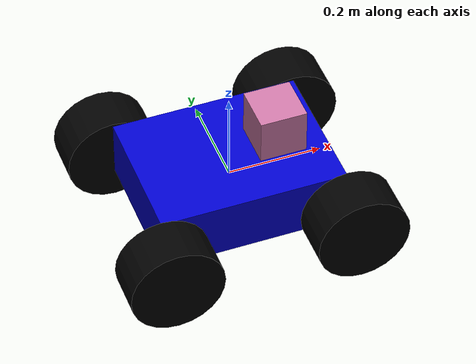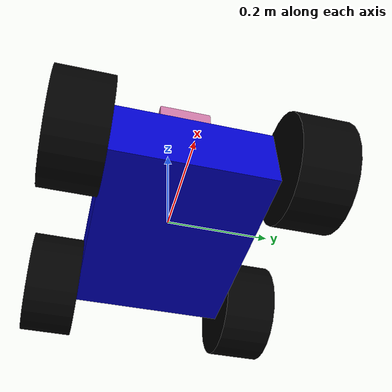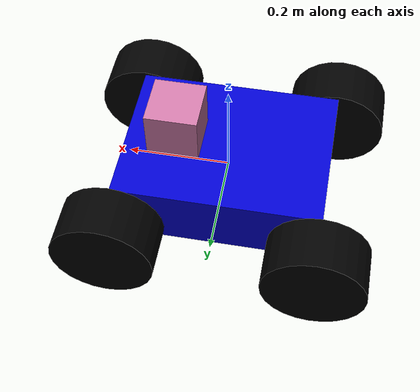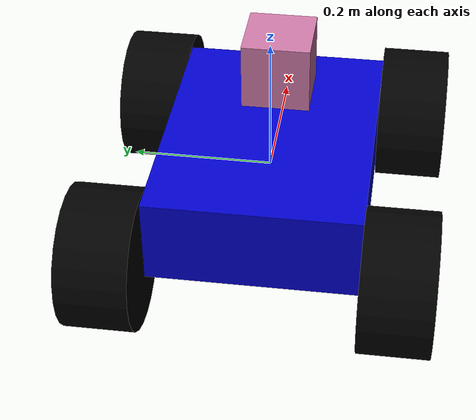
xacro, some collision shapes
<?xml version="1.0"?>
<robot xmlns:xacro="http://www.ros.org/wiki/xacro" name="robot">
	<property name="PI" value="3.1415926535897931" />
	<xacro:property name="rob_name" value="robby" />

	<xacro:property name="base_mass" value="7.0"/>
	<xacro:property name="base_hight" value="0.125"/>
	<xacro:property name="base_width" value="0.3"/>
	<xacro:property name="base_length" value="0.4"/>
	<xacro:property name="base_Ix" value="${base_mass*(base_hight*base_hight+base_width*base_width)/12}"/>
	<xacro:property name="base_Iy" value="${base_mass*(base_length*base_length+base_hight*base_hight)/12}"/>
	<xacro:property name="base_Iz" value="${base_mass*(base_length*base_length+base_width*base_width)/12 * 0.5}"/>

	<xacro:property name="wheel_radius" value="0.1"/>
	<xacro:property name="wheel_length" value="0.1"/>
	<xacro:property name="wheel_mass" value="0.5"/>
	<xacro:property name="wheel_Iz" value="${wheel_mass*wheel_radius*wheel_radius/2}"/>
	<xacro:property name="wheel_Ix" value="${wheel_mass*(3*wheel_radius*wheel_radius+wheel_length*wheel_length)/12}"/>

	<joint name="base_footprint_joint" type="fixed">
    	<axis xyz="0 0 0"/>
    	<origin xyz="0.0 0.0 0.0"/>
    	<parent link="base_footprint"/>
    	<child link="base_link"/>
 	</joint>

 	<link name="base_footprint">
 	</link>

	<!-- base of robot-->
	<xacro:macro name="base_link">
		<link name="base_link">
			<visual>
				<geometry>
					<box size="${base_length} ${base_width} ${base_hight}"/>
				</geometry>
				<material name="blue">
					<color rgba="0 0 .8 1"/>
				</material>
			</visual>
			<collision>
				<geometry>
					<box size="${base_length} ${base_width} ${base_hight}"/>
				</geometry>
			</collision>
			<inertial>
				<mass value="${base_mass}"/>
				<inertia ixx="${wheel_Ix}" ixy="0.0" ixz="0.0" iyy="${base_Iy}" iyz="0.0" izz="${base_Iz}"/>
			</inertial>
		</link>
	</xacro:macro>
	<xacro:base_link/>

	<!--wheels-->

	<xacro:macro name="wheel" params="prefix xyz_offsets">
		<link name="${prefix}_wheel">
			<visual>
				<geometry>
					<cylinder length="${wheel_length}" radius="${wheel_radius}"/>
				</geometry>
				<material name="black">
					<color rgba="0 0 0 1"/>
				</material>
			</visual>
			<collision>
				<geometry>
					<cylinder length="${wheel_length}" radius="${wheel_radius}"/>
				</geometry>
			</collision>
			<inertial>
				<mass value="${wheel_mass}"/>
				<inertia ixx="${wheel_Ix}" ixy="0.0" ixz="0.0" iyy="${wheel_Ix}" iyz="0.0" izz="${wheel_Iz}"/>
			</inertial>
		</link>

		<gazebo reference="{prefix}_wheel">
			<mu1 value="0.8"/>
			<mu2 value="0.8"/>
			<fdir value="1 0 0"/>
			<material>Gazebo/Black</material>
		</gazebo>

		<joint name="${prefix}_wheel_joint" type="continuous">
			<axis xyz="0 0 1"/>
			<parent link="base_link"/>
			<child link="${prefix}_wheel"/>
			<origin rpy="0 ${PI/2} ${PI/2}" xyz="${xyz_offsets}"/>
			<limit effort="100" velocity="100"/>
			<joint_properties damping="0.0" friction="0.0"/>
		</joint>
	</xacro:macro>

	<xacro:wheel prefix="right_front" xyz_offsets="${base_length/2} ${(base_width+wheel_length)/2} -${base_hight/4}"/>

	<xacro:wheel prefix="right_rear" xyz_offsets="-${base_length/2} ${(base_width+wheel_length)/2} -${base_hight/4}"/>

	<xacro:wheel prefix="left_front" xyz_offsets="${base_length/2} -${(base_width+wheel_length)/2} -${base_hight/4}"/>

	<xacro:wheel prefix="left_rear" xyz_offsets="-${base_length/2} -${(base_width+wheel_length)/2} -${base_hight/4}"/>

	<gazebo reference="base_link">
		<material>Gazebo/Blue</material>
	</gazebo>
	<gazebo reference="right_front_wheel">
		<material>Gazebo/Black</material>
	</gazebo>
	<gazebo reference="right_rear_wheel">
		<material>Gazebo/Black</material>
	</gazebo>
	<gazebo reference="left_front_wheel">
		<material>Gazebo/Black</material>
	</gazebo>
	<gazebo reference="left_rear_wheel">
		<material>Gazebo/Black</material>
	</gazebo>

	<!-- Hokuyo Laser -->
	<joint name="hokuyo_joint" type="fixed">
		<origin xyz="${base_length/2 - base_length/4} 0 ${base_hight/2 + 0.05}" rpy="0 0 0"/>
		<parent link="base_link"/>
		<child link="hokuyo_link"/>
	</joint>

	<link name="hokuyo_link">
		<collision>
			<geometry>
				<box size="0.1 0.1 0.1"/>
			</geometry>
		</collision>

		<visual>
			<geometry>
				<mesh filename="package://robot_description/meshes/hokuyo.dae"/>
			</geometry>
		</visual>

		<inertial>
			<mass value="1e-5" />
			<inertia ixx="1e-6" ixy="0" ixz="0" iyy="1e-6" iyz="0" izz="1e-6" />
		</inertial>
	</link>

	<gazebo reference="hokuyo_link">
		<sensor name="head_hokuyo_sensor" type="gpu_ray">
			<visualize>false</visualize>
			<update_rate>40</update_rate>
			<ray>
				<scan>
					<horizontal>
						<samples>720</samples>
						<resolution>1</resolution>
						<min_angle>-1.570796</min_angle>
						<max_angle>1.570796</max_angle>
					</horizontal>
				</scan>
				<range>
					<min>0.10</min>
					<max>30.0</max>
					<resolution>0.01</resolution>
				</range>
				<noise>
					<type>gaussian</type>
					<mean>0.0</mean>
					<stddev>0.01</stddev>
				</noise>
			</ray>
			<plugin filename="libgazebo_ros_gpu_laser.so" name="gazebo_ros_head_hokuyo_controller">
				<topicName>/gazebo/laser_scan</topicName>
				<frameName>hokuyo_link</frameName>
			</plugin>
		</sensor>
	</gazebo>

	<!--diff drive contr-->
	<gazebo>
		<plugin name="robot_controller" filename="libgazebo_ros_plugin.so">
			<cmd_vel_topic_name>cmd_vel</cmd_vel_topic_name>
			<odom_topic_name>odom</odom_topic_name>
			<joint_states_topic_name>joint_states</joint_states_topic_name>
			<left_front_wheel_joint>left_front_wheel_joint</left_front_wheel_joint>
			<left_rear_wheel_joint>left_rear_wheel_joint</left_rear_wheel_joint>
			<right_front_wheel_joint>right_front_wheel_joint</right_front_wheel_joint>
			<right_rear_wheel_joint>right_rear_wheel_joint</right_rear_wheel_joint>
			<wheel_separation>${base_width + wheel_length}</wheel_separation>
		</plugin>
	</gazebo>

	<xacro:macro name="trans" params="prefix">
		<transmission name="caster_${prefix}_wheel">
			<type>transmission_interface/SimpleTransmission</type>
			<joint name="${prefix}_wheel_joint"/>
			<actuator name="${prefix}_wheel_joint_motor">
				<hardwareInterface>EffortJointInterface</hardwareInterface>
				<mechanicalReduction>50</mechanicalReduction>
			</actuator>
		</transmission>
	</xacro:macro>

	<xacro:trans prefix="rigth_front"/>

	<xacro:trans prefix="rigth_back"/>

	<xacro:trans prefix="left_front"/>

	<xacro:trans prefix="left_back"/>

	<joint name="imu_joint" type="fixed">
    	<axis xyz="0 0 0"/>
    	<origin xyz="0.0 0.0 0.0"/>
    	<parent link="base_link"/>
    	<child link="imu_link"/>
 	</joint>

 	<link name="imu_link">
 		<inertial>
 			<mass value="0.001"/>
 			<origin rpy="0.0 0.0 0.0" xyz="0.0 0.0 0.0"/>
 			<inertia ixx="0.0001" ixy="0" ixz="0" iyy="0.000001" iyz="0" izz="0.0001"/>
 		</inertial>
 		<collision>
 			<origin rpy="0 0 0" xyz="0 0 0"/>
 			<geometry>
 				<box size=".001 .001 .001"/>
 			</geometry>
 		</collision>
 	</link>

 	<gazebo>
 		<plugin filename="libgazebo_ros_imu.so" name="imu_en_ros">
 			<alwaysOn>true</alwaysOn>
 			<updateRate>100.0</updateRate>
 			<bodyName>imu_link</bodyName>
 			<topicName>imu_data</topicName>
 			<gaussianNoise>2.89e-08</gaussianNoise>
 			<xyzOffset>0.0 0.0 0.0</xyzOffset>
 			<rpyOffset>0.0 0.0 0.0</rpyOffset>
 		</plugin>
 	</gazebo>

</robot>
